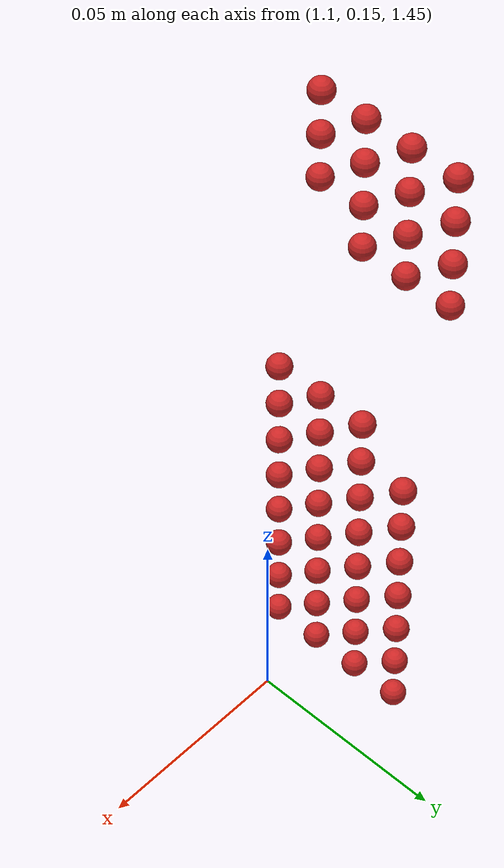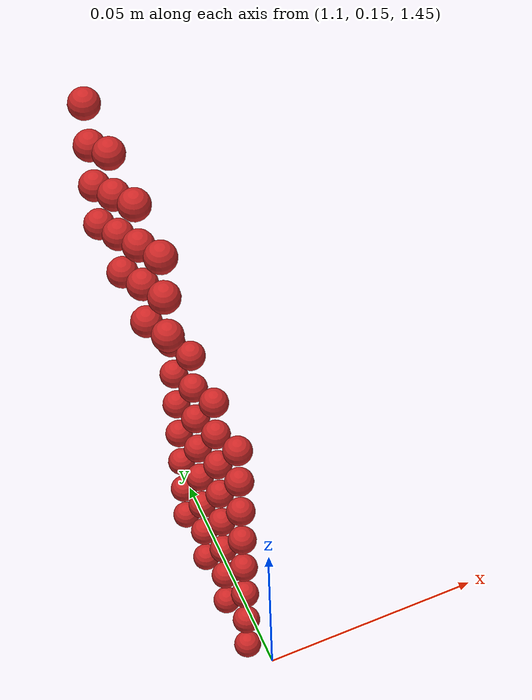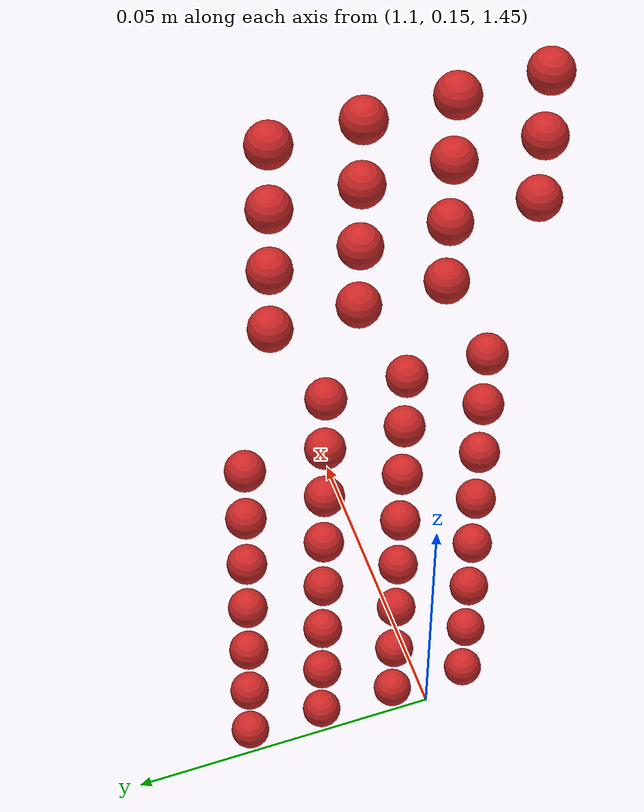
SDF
<sdf version="1.4">
 <world name="default">
  <model name="ground_plane">
   <static>1</static>
   <link name="link">
    <collision name="collision">
     <geometry><plane><normal>0 0 1</normal><size>100 100</size></plane></geometry>
     <surface><friction><ode><mu>100</mu><mu2>50</mu2></ode></friction></surface>
    </collision>
    <visual name="visual">
     <cast_shadows>0</cast_shadows>
     <geometry><plane><normal>0 0 1</normal><size>100 100</size></plane></geometry>
     <material>
      <script><uri>file://media/materials/scripts/gazebo.material</uri><name>Gazebo/Grey</name></script>
     </material>
    </visual>
    <velocity_decay><linear>0</linear><angular>0</angular></velocity_decay>
   </link>
  </model>
  <model name="sphere1">
   <pose>0.552545 0.079517 0.734885 0 0 0</pose>
   <link name="link">
    <pose>0.540545 0.067517 0.734885 0 0 0</pose>
    <inertial>
     <mass>0.001</mass>
     <inertia>
      <ixx>0.004</ixx>
      <ixy>0.000000</ixy>
      <ixz>0.000000</ixz>
      <iyy>0.004</iyy>
      <iyz>0.000000</iyz>
      <izz>0.004</izz>
     </inertia>
    </inertial>
    <collision name="collision">
     <surface>
      <contact><ode><kp>10000000000.000000</kp><kd>1</kd></ode></contact>
      <friction><ode><mu>0.01</mu><mu2>0.01</mu2></ode></friction>
     </surface>
     <geometry><sphere><radius>0.003</radius></sphere></geometry>
    </collision>
    <visual name="visual">
     <geometry><sphere><radius>0.003</radius></sphere></geometry>
     <material>
      <script><uri>file://media/materials/scripts/gazebo.material</uri><name>Gazebo/Red</name></script>
     </material>
    </visual>
   </link>
  </model>
  <model name="sphere5">
   <pose>0.552545 0.085517 0.734885 0 0 0</pose>
   <link name="link">
    <pose>0.540545 0.073517 0.734885 0 0 0</pose>
    <inertial>
     <mass>0.001</mass>
     <inertia>
      <ixx>0.004</ixx>
      <ixy>0.000000</ixy>
      <ixz>0.000000</ixz>
      <iyy>0.004</iyy>
      <iyz>0.000000</iyz>
      <izz>0.004</izz>
     </inertia>
    </inertial>
    <collision name="collision">
     <surface>
      <contact><ode><kp>10000000000.000000</kp><kd>1</kd></ode></contact>
      <friction><ode><mu>0.01</mu><mu2>0.01</mu2></ode></friction>
     </surface>
     <geometry><sphere><radius>0.003</radius></sphere></geometry>
    </collision>
    <visual name="visual">
     <geometry><sphere><radius>0.003</radius></sphere></geometry>
     <material>
      <script><uri>file://media/materials/scripts/gazebo.material</uri><name>Gazebo/Red</name></script>
     </material>
    </visual>
   </link>
  </model>
  <model name="sphere9">
   <pose>0.552545 0.091517 0.734885 0 0 0</pose>
   <link name="link">
    <pose>0.540545 0.079517 0.734885 0 0 0</pose>
    <inertial>
     <mass>0.001</mass>
     <inertia>
      <ixx>0.004</ixx>
      <ixy>0.000000</ixy>
      <ixz>0.000000</ixz>
      <iyy>0.004</iyy>
      <iyz>0.000000</iyz>
      <izz>0.004</izz>
     </inertia>
    </inertial>
    <collision name="collision">
     <surface>
      <contact><ode><kp>10000000000.000000</kp><kd>1</kd></ode></contact>
      <friction><ode><mu>0.01</mu><mu2>0.01</mu2></ode></friction>
     </surface>
     <geometry><sphere><radius>0.003</radius></sphere></geometry>
    </collision>
    <visual name="visual">
     <geometry><sphere><radius>0.003</radius></sphere></geometry>
     <material>
      <script><uri>file://media/materials/scripts/gazebo.material</uri><name>Gazebo/Red</name></script>
     </material>
    </visual>
   </link>
  </model>
  <model name="sphere13">
   <pose>0.552545 0.097517 0.734885 0 0 0</pose>
   <link name="link">
    <pose>0.540545 0.085517 0.734885 0 0 0</pose>
    <inertial>
     <mass>0.001</mass>
     <inertia>
      <ixx>0.004</ixx>
      <ixy>0.000000</ixy>
      <ixz>0.000000</ixz>
      <iyy>0.004</iyy>
      <iyz>0.000000</iyz>
      <izz>0.004</izz>
     </inertia>
    </inertial>
    <collision name="collision">
     <surface>
      <contact><ode><kp>10000000000.000000</kp><kd>1</kd></ode></contact>
      <friction><ode><mu>0.01</mu><mu2>0.01</mu2></ode></friction>
     </surface>
     <geometry><sphere><radius>0.003</radius></sphere></geometry>
    </collision>
    <visual name="visual">
     <geometry><sphere><radius>0.003</radius></sphere></geometry>
     <material>
      <script><uri>file://media/materials/scripts/gazebo.material</uri><name>Gazebo/Red</name></script>
     </material>
    </visual>
   </link>
  </model>
  <model name="sphere17">
   <pose>0.552545 0.079517 0.740885 0 0 0</pose>
   <link name="link">
    <pose>0.540545 0.067517 0.740885 0 0 0</pose>
    <inertial>
     <mass>0.001</mass>
     <inertia>
      <ixx>0.004</ixx>
      <ixy>0.000000</ixy>
      <ixz>0.000000</ixz>
      <iyy>0.004</iyy>
      <iyz>0.000000</iyz>
      <izz>0.004</izz>
     </inertia>
    </inertial>
    <collision name="collision">
     <surface>
      <contact><ode><kp>10000000000.000000</kp><kd>1</kd></ode></contact>
      <friction><ode><mu>0.01</mu><mu2>0.01</mu2></ode></friction>
     </surface>
     <geometry><sphere><radius>0.003</radius></sphere></geometry>
    </collision>
    <visual name="visual">
     <geometry><sphere><radius>0.003</radius></sphere></geometry>
     <material>
      <script><uri>file://media/materials/scripts/gazebo.material</uri><name>Gazebo/Red</name></script>
     </material>
    </visual>
   </link>
  </model>
  <model name="sphere21">
   <pose>0.552545 0.085517 0.740885 0 0 0</pose>
   <link name="link">
    <pose>0.540545 0.073517 0.740885 0 0 0</pose>
    <inertial>
     <mass>0.001</mass>
     <inertia>
      <ixx>0.004</ixx>
      <ixy>0.000000</ixy>
      <ixz>0.000000</ixz>
      <iyy>0.004</iyy>
      <iyz>0.000000</iyz>
      <izz>0.004</izz>
     </inertia>
    </inertial>
    <collision name="collision">
     <surface>
      <contact><ode><kp>10000000000.000000</kp><kd>1</kd></ode></contact>
      <friction><ode><mu>0.01</mu><mu2>0.01</mu2></ode></friction>
     </surface>
     <geometry><sphere><radius>0.003</radius></sphere></geometry>
    </collision>
    <visual name="visual">
     <geometry><sphere><radius>0.003</radius></sphere></geometry>
     <material>
      <script><uri>file://media/materials/scripts/gazebo.material</uri><name>Gazebo/Red</name></script>
     </material>
    </visual>
   </link>
  </model>
  <model name="sphere25">
   <pose>0.552545 0.091517 0.740885 0 0 0</pose>
   <link name="link">
    <pose>0.540545 0.079517 0.740885 0 0 0</pose>
    <inertial>
     <mass>0.001</mass>
     <inertia>
      <ixx>0.004</ixx>
      <ixy>0.000000</ixy>
      <ixz>0.000000</ixz>
      <iyy>0.004</iyy>
      <iyz>0.000000</iyz>
      <izz>0.004</izz>
     </inertia>
    </inertial>
    <collision name="collision">
     <surface>
      <contact><ode><kp>10000000000.000000</kp><kd>1</kd></ode></contact>
      <friction><ode><mu>0.01</mu><mu2>0.01</mu2></ode></friction>
     </surface>
     <geometry><sphere><radius>0.003</radius></sphere></geometry>
    </collision>
    <visual name="visual">
     <geometry><sphere><radius>0.003</radius></sphere></geometry>
     <material>
      <script><uri>file://media/materials/scripts/gazebo.material</uri><name>Gazebo/Red</name></script>
     </material>
    </visual>
   </link>
  </model>
  <model name="sphere29">
   <pose>0.552545 0.097517 0.740885 0 0 0</pose>
   <link name="link">
    <pose>0.540545 0.085517 0.740885 0 0 0</pose>
    <inertial>
     <mass>0.001</mass>
     <inertia>
      <ixx>0.004</ixx>
      <ixy>0.000000</ixy>
      <ixz>0.000000</ixz>
      <iyy>0.004</iyy>
      <iyz>0.000000</iyz>
      <izz>0.004</izz>
     </inertia>
    </inertial>
    <collision name="collision">
     <surface>
      <contact><ode><kp>10000000000.000000</kp><kd>1</kd></ode></contact>
      <friction><ode><mu>0.01</mu><mu2>0.01</mu2></ode></friction>
     </surface>
     <geometry><sphere><radius>0.003</radius></sphere></geometry>
    </collision>
    <visual name="visual">
     <geometry><sphere><radius>0.003</radius></sphere></geometry>
     <material>
      <script><uri>file://media/materials/scripts/gazebo.material</uri><name>Gazebo/Red</name></script>
     </material>
    </visual>
   </link>
  </model>
  <model name="sphere33">
   <pose>0.552545 0.079517 0.746885 0 0 0</pose>
   <link name="link">
    <pose>0.540545 0.067517 0.746885 0 0 0</pose>
    <inertial>
     <mass>0.001</mass>
     <inertia>
      <ixx>0.004</ixx>
      <ixy>0.000000</ixy>
      <ixz>0.000000</ixz>
      <iyy>0.004</iyy>
      <iyz>0.000000</iyz>
      <izz>0.004</izz>
     </inertia>
    </inertial>
    <collision name="collision">
     <surface>
      <contact><ode><kp>10000000000.000000</kp><kd>1</kd></ode></contact>
      <friction><ode><mu>0.01</mu><mu2>0.01</mu2></ode></friction>
     </surface>
     <geometry><sphere><radius>0.003</radius></sphere></geometry>
    </collision>
    <visual name="visual">
     <geometry><sphere><radius>0.003</radius></sphere></geometry>
     <material>
      <script><uri>file://media/materials/scripts/gazebo.material</uri><name>Gazebo/Red</name></script>
     </material>
    </visual>
   </link>
  </model>
  <model name="sphere37">
   <pose>0.552545 0.085517 0.746885 0 0 0</pose>
   <link name="link">
    <pose>0.540545 0.073517 0.746885 0 0 0</pose>
    <inertial>
     <mass>0.001</mass>
     <inertia>
      <ixx>0.004</ixx>
      <ixy>0.000000</ixy>
      <ixz>0.000000</ixz>
      <iyy>0.004</iyy>
      <iyz>0.000000</iyz>
      <izz>0.004</izz>
     </inertia>
    </inertial>
    <collision name="collision">
     <surface>
      <contact><ode><kp>10000000000.000000</kp><kd>1</kd></ode></contact>
      <friction><ode><mu>0.01</mu><mu2>0.01</mu2></ode></friction>
     </surface>
     <geometry><sphere><radius>0.003</radius></sphere></geometry>
    </collision>
    <visual name="visual">
     <geometry><sphere><radius>0.003</radius></sphere></geometry>
     <material>
      <script><uri>file://media/materials/scripts/gazebo.material</uri><name>Gazebo/Red</name></script>
     </material>
    </visual>
   </link>
  </model>
  <model name="sphere41">
   <pose>0.552545 0.091517 0.746885 0 0 0</pose>
   <link name="link">
    <pose>0.540545 0.079517 0.746885 0 0 0</pose>
    <inertial>
     <mass>0.001</mass>
     <inertia>
      <ixx>0.004</ixx>
      <ixy>0.000000</ixy>
      <ixz>0.000000</ixz>
      <iyy>0.004</iyy>
      <iyz>0.000000</iyz>
      <izz>0.004</izz>
     </inertia>
    </inertial>
    <collision name="collision">
     <surface>
      <contact><ode><kp>10000000000.000000</kp><kd>1</kd></ode></contact>
      <friction><ode><mu>0.01</mu><mu2>0.01</mu2></ode></friction>
     </surface>
     <geometry><sphere><radius>0.003</radius></sphere></geometry>
    </collision>
    <visual name="visual">
     <geometry><sphere><radius>0.003</radius></sphere></geometry>
     <material>
      <script><uri>file://media/materials/scripts/gazebo.material</uri><name>Gazebo/Red</name></script>
     </material>
    </visual>
   </link>
  </model>
  <model name="sphere45">
   <pose>0.552545 0.097517 0.746885 0 0 0</pose>
   <link name="link">
    <pose>0.540545 0.085517 0.746885 0 0 0</pose>
    <inertial>
     <mass>0.001</mass>
     <inertia>
      <ixx>0.004</ixx>
      <ixy>0.000000</ixy>
      <ixz>0.000000</ixz>
      <iyy>0.004</iyy>
      <iyz>0.000000</iyz>
      <izz>0.004</izz>
     </inertia>
    </inertial>
    <collision name="collision">
     <surface>
      <contact><ode><kp>10000000000.000000</kp><kd>1</kd></ode></contact>
      <friction><ode><mu>0.01</mu><mu2>0.01</mu2></ode></friction>
     </surface>
     <geometry><sphere><radius>0.003</radius></sphere></geometry>
    </collision>
    <visual name="visual">
     <geometry><sphere><radius>0.003</radius></sphere></geometry>
     <material>
      <script><uri>file://media/materials/scripts/gazebo.material</uri><name>Gazebo/Red</name></script>
     </material>
    </visual>
   </link>
  </model>
  <model name="sphere49">
   <pose>0.552545 0.079517 0.752885 0 0 0</pose>
   <link name="link">
    <pose>0.540545 0.067517 0.752885 0 0 0</pose>
    <inertial>
     <mass>0.001</mass>
     <inertia>
      <ixx>0.004</ixx>
      <ixy>0.000000</ixy>
      <ixz>0.000000</ixz>
      <iyy>0.004</iyy>
      <iyz>0.000000</iyz>
      <izz>0.004</izz>
     </inertia>
    </inertial>
    <collision name="collision">
     <surface>
      <contact><ode><kp>10000000000.000000</kp><kd>1</kd></ode></contact>
      <friction><ode><mu>0.01</mu><mu2>0.01</mu2></ode></friction>
     </surface>
     <geometry><sphere><radius>0.003</radius></sphere></geometry>
    </collision>
    <visual name="visual">
     <geometry><sphere><radius>0.003</radius></sphere></geometry>
     <material>
      <script><uri>file://media/materials/scripts/gazebo.material</uri><name>Gazebo/Red</name></script>
     </material>
    </visual>
   </link>
  </model>
  <model name="sphere53">
   <pose>0.552545 0.085517 0.752885 0 0 0</pose>
   <link name="link">
    <pose>0.540545 0.073517 0.752885 0 0 0</pose>
    <inertial>
     <mass>0.001</mass>
     <inertia>
      <ixx>0.004</ixx>
      <ixy>0.000000</ixy>
      <ixz>0.000000</ixz>
      <iyy>0.004</iyy>
      <iyz>0.000000</iyz>
      <izz>0.004</izz>
     </inertia>
    </inertial>
    <collision name="collision">
     <surface>
      <contact><ode><kp>10000000000.000000</kp><kd>1</kd></ode></contact>
      <friction><ode><mu>0.01</mu><mu2>0.01</mu2></ode></friction>
     </surface>
     <geometry><sphere><radius>0.003</radius></sphere></geometry>
    </collision>
    <visual name="visual">
     <geometry><sphere><radius>0.003</radius></sphere></geometry>
     <material>
      <script><uri>file://media/materials/scripts/gazebo.material</uri><name>Gazebo/Red</name></script>
     </material>
    </visual>
   </link>
  </model>
  <model name="sphere57">
   <pose>0.552545 0.091517 0.752885 0 0 0</pose>
   <link name="link">
    <pose>0.540545 0.079517 0.752885 0 0 0</pose>
    <inertial>
     <mass>0.001</mass>
     <inertia>
      <ixx>0.004</ixx>
      <ixy>0.000000</ixy>
      <ixz>0.000000</ixz>
      <iyy>0.004</iyy>
      <iyz>0.000000</iyz>
      <izz>0.004</izz>
     </inertia>
    </inertial>
    <collision name="collision">
     <surface>
      <contact><ode><kp>10000000000.000000</kp><kd>1</kd></ode></contact>
      <friction><ode><mu>0.01</mu><mu2>0.01</mu2></ode></friction>
     </surface>
     <geometry><sphere><radius>0.003</radius></sphere></geometry>
    </collision>
    <visual name="visual">
     <geometry><sphere><radius>0.003</radius></sphere></geometry>
     <material>
      <script><uri>file://media/materials/scripts/gazebo.material</uri><name>Gazebo/Red</name></script>
     </material>
    </visual>
   </link>
  </model>
  <model name="sphere61">
   <pose>0.552545 0.097517 0.752885 0 0 0</pose>
   <link name="link">
    <pose>0.540545 0.085517 0.752885 0 0 0</pose>
    <inertial>
     <mass>0.001</mass>
     <inertia>
      <ixx>0.004</ixx>
      <ixy>0.000000</ixy>
      <ixz>0.000000</ixz>
      <iyy>0.004</iyy>
      <iyz>0.000000</iyz>
      <izz>0.004</izz>
     </inertia>
    </inertial>
    <collision name="collision">
     <surface>
      <contact><ode><kp>10000000000.000000</kp><kd>1</kd></ode></contact>
      <friction><ode><mu>0.01</mu><mu2>0.01</mu2></ode></friction>
     </surface>
     <geometry><sphere><radius>0.003</radius></sphere></geometry>
    </collision>
    <visual name="visual">
     <geometry><sphere><radius>0.003</radius></sphere></geometry>
     <material>
      <script><uri>file://media/materials/scripts/gazebo.material</uri><name>Gazebo/Red</name></script>
     </material>
    </visual>
   </link>
  </model>
  <model name="sphere65">
   <pose>0.552545 0.079517 0.758885 0 0 0</pose>
   <link name="link">
    <pose>0.540545 0.067517 0.758885 0 0 0</pose>
    <inertial>
     <mass>0.001</mass>
     <inertia>
      <ixx>0.004</ixx>
      <ixy>0.000000</ixy>
      <ixz>0.000000</ixz>
      <iyy>0.004</iyy>
      <iyz>0.000000</iyz>
      <izz>0.004</izz>
     </inertia>
    </inertial>
    <collision name="collision">
     <surface>
      <contact><ode><kp>10000000000.000000</kp><kd>1</kd></ode></contact>
      <friction><ode><mu>0.01</mu><mu2>0.01</mu2></ode></friction>
     </surface>
     <geometry><sphere><radius>0.003</radius></sphere></geometry>
    </collision>
    <visual name="visual">
     <geometry><sphere><radius>0.003</radius></sphere></geometry>
     <material>
      <script><uri>file://media/materials/scripts/gazebo.material</uri><name>Gazebo/Red</name></script>
     </material>
    </visual>
   </link>
  </model>
  <model name="sphere69">
   <pose>0.552545 0.085517 0.758885 0 0 0</pose>
   <link name="link">
    <pose>0.540545 0.073517 0.758885 0 0 0</pose>
    <inertial>
     <mass>0.001</mass>
     <inertia>
      <ixx>0.004</ixx>
      <ixy>0.000000</ixy>
      <ixz>0.000000</ixz>
      <iyy>0.004</iyy>
      <iyz>0.000000</iyz>
      <izz>0.004</izz>
     </inertia>
    </inertial>
    <collision name="collision">
     <surface>
      <contact><ode><kp>10000000000.000000</kp><kd>1</kd></ode></contact>
      <friction><ode><mu>0.01</mu><mu2>0.01</mu2></ode></friction>
     </surface>
     <geometry><sphere><radius>0.003</radius></sphere></geometry>
    </collision>
    <visual name="visual">
     <geometry><sphere><radius>0.003</radius></sphere></geometry>
     <material>
      <script><uri>file://media/materials/scripts/gazebo.material</uri><name>Gazebo/Red</name></script>
     </material>
    </visual>
   </link>
  </model>
  <model name="sphere73">
   <pose>0.552545 0.091517 0.758885 0 0 0</pose>
   <link name="link">
    <pose>0.540545 0.079517 0.758885 0 0 0</pose>
    <inertial>
     <mass>0.001</mass>
     <inertia>
      <ixx>0.004</ixx>
      <ixy>0.000000</ixy>
      <ixz>0.000000</ixz>
      <iyy>0.004</iyy>
      <iyz>0.000000</iyz>
      <izz>0.004</izz>
     </inertia>
    </inertial>
    <collision name="collision">
     <surface>
      <contact><ode><kp>10000000000.000000</kp><kd>1</kd></ode></contact>
      <friction><ode><mu>0.01</mu><mu2>0.01</mu2></ode></friction>
     </surface>
     <geometry><sphere><radius>0.003</radius></sphere></geometry>
    </collision>
    <visual name="visual">
     <geometry><sphere><radius>0.003</radius></sphere></geometry>
     <material>
      <script><uri>file://media/materials/scripts/gazebo.material</uri><name>Gazebo/Red</name></script>
     </material>
    </visual>
   </link>
  </model>
  <model name="sphere77">
   <pose>0.552545 0.097517 0.758885 0 0 0</pose>
   <link name="link">
    <pose>0.540545 0.085517 0.758885 0 0 0</pose>
    <inertial>
     <mass>0.001</mass>
     <inertia>
      <ixx>0.004</ixx>
      <ixy>0.000000</ixy>
      <ixz>0.000000</ixz>
      <iyy>0.004</iyy>
      <iyz>0.000000</iyz>
      <izz>0.004</izz>
     </inertia>
    </inertial>
    <collision name="collision">
     <surface>
      <contact><ode><kp>10000000000.000000</kp><kd>1</kd></ode></contact>
      <friction><ode><mu>0.01</mu><mu2>0.01</mu2></ode></friction>
     </surface>
     <geometry><sphere><radius>0.003</radius></sphere></geometry>
    </collision>
    <visual name="visual">
     <geometry><sphere><radius>0.003</radius></sphere></geometry>
     <material>
      <script><uri>file://media/materials/scripts/gazebo.material</uri><name>Gazebo/Red</name></script>
     </material>
    </visual>
   </link>
  </model>
  <model name="sphere81">
   <pose>0.552545 0.079517 0.764885 0 0 0</pose>
   <link name="link">
    <pose>0.540545 0.067517 0.764885 0 0 0</pose>
    <inertial>
     <mass>0.001</mass>
     <inertia>
      <ixx>0.004</ixx>
      <ixy>0.000000</ixy>
      <ixz>0.000000</ixz>
      <iyy>0.004</iyy>
      <iyz>0.000000</iyz>
      <izz>0.004</izz>
     </inertia>
    </inertial>
    <collision name="collision">
     <surface>
      <contact><ode><kp>10000000000.000000</kp><kd>1</kd></ode></contact>
      <friction><ode><mu>0.01</mu><mu2>0.01</mu2></ode></friction>
     </surface>
     <geometry><sphere><radius>0.003</radius></sphere></geometry>
    </collision>
    <visual name="visual">
     <geometry><sphere><radius>0.003</radius></sphere></geometry>
     <material>
      <script><uri>file://media/materials/scripts/gazebo.material</uri><name>Gazebo/Red</name></script>
     </material>
    </visual>
   </link>
  </model>
  <model name="sphere85">
   <pose>0.552545 0.085517 0.764885 0 0 0</pose>
   <link name="link">
    <pose>0.540545 0.073517 0.764885 0 0 0</pose>
    <inertial>
     <mass>0.001</mass>
     <inertia>
      <ixx>0.004</ixx>
      <ixy>0.000000</ixy>
      <ixz>0.000000</ixz>
      <iyy>0.004</iyy>
      <iyz>0.000000</iyz>
      <izz>0.004</izz>
     </inertia>
    </inertial>
    <collision name="collision">
     <surface>
      <contact><ode><kp>10000000000.000000</kp><kd>1</kd></ode></contact>
      <friction><ode><mu>0.01</mu><mu2>0.01</mu2></ode></friction>
     </surface>
     <geometry><sphere><radius>0.003</radius></sphere></geometry>
    </collision>
    <visual name="visual">
     <geometry><sphere><radius>0.003</radius></sphere></geometry>
     <material>
      <script><uri>file://media/materials/scripts/gazebo.material</uri><name>Gazebo/Red</name></script>
     </material>
    </visual>
   </link>
  </model>
  <model name="sphere89">
   <pose>0.552545 0.091517 0.764885 0 0 0</pose>
   <link name="link">
    <pose>0.540545 0.079517 0.764885 0 0 0</pose>
    <inertial>
     <mass>0.001</mass>
     <inertia>
      <ixx>0.004</ixx>
      <ixy>0.000000</ixy>
      <ixz>0.000000</ixz>
      <iyy>0.004</iyy>
      <iyz>0.000000</iyz>
      <izz>0.004</izz>
     </inertia>
    </inertial>
    <collision name="collision">
     <surface>
      <contact><ode><kp>10000000000.000000</kp><kd>1</kd></ode></contact>
      <friction><ode><mu>0.01</mu><mu2>0.01</mu2></ode></friction>
     </surface>
     <geometry><sphere><radius>0.003</radius></sphere></geometry>
    </collision>
    <visual name="visual">
     <geometry><sphere><radius>0.003</radius></sphere></geometry>
     <material>
      <script><uri>file://media/materials/scripts/gazebo.material</uri><name>Gazebo/Red</name></script>
     </material>
    </visual>
   </link>
  </model>
  <model name="sphere93">
   <pose>0.552545 0.097517 0.764885 0 0 0</pose>
   <link name="link">
    <pose>0.540545 0.085517 0.764885 0 0 0</pose>
    <inertial>
     <mass>0.001</mass>
     <inertia>
      <ixx>0.004</ixx>
      <ixy>0.000000</ixy>
      <ixz>0.000000</ixz>
      <iyy>0.004</iyy>
      <iyz>0.000000</iyz>
      <izz>0.004</izz>
     </inertia>
    </inertial>
    <collision name="collision">
     <surface>
      <contact><ode><kp>10000000000.000000</kp><kd>1</kd></ode></contact>
      <friction><ode><mu>0.01</mu><mu2>0.01</mu2></ode></friction>
     </surface>
     <geometry><sphere><radius>0.003</radius></sphere></geometry>
    </collision>
    <visual name="visual">
     <geometry><sphere><radius>0.003</radius></sphere></geometry>
     <material>
      <script><uri>file://media/materials/scripts/gazebo.material</uri><name>Gazebo/Red</name></script>
     </material>
    </visual>
   </link>
  </model>
  <model name="sphere97">
   <pose>0.552545 0.079517 0.770885 0 0 0</pose>
   <link name="link">
    <pose>0.540545 0.067517 0.770885 0 0 0</pose>
    <inertial>
     <mass>0.001</mass>
     <inertia>
      <ixx>0.004</ixx>
      <ixy>0.000000</ixy>
      <ixz>0.000000</ixz>
      <iyy>0.004</iyy>
      <iyz>0.000000</iyz>
      <izz>0.004</izz>
     </inertia>
    </inertial>
    <collision name="collision">
     <surface>
      <contact><ode><kp>10000000000.000000</kp><kd>1</kd></ode></contact>
      <friction><ode><mu>0.01</mu><mu2>0.01</mu2></ode></friction>
     </surface>
     <geometry><sphere><radius>0.003</radius></sphere></geometry>
    </collision>
    <visual name="visual">
     <geometry><sphere><radius>0.003</radius></sphere></geometry>
     <material>
      <script><uri>file://media/materials/scripts/gazebo.material</uri><name>Gazebo/Red</name></script>
     </material>
    </visual>
   </link>
  </model>
  <model name="sphere101">
   <pose>0.552545 0.085517 0.770885 0 0 0</pose>
   <link name="link">
    <pose>0.540545 0.073517 0.770885 0 0 0</pose>
    <inertial>
     <mass>0.001</mass>
     <inertia>
      <ixx>0.004</ixx>
      <ixy>0.000000</ixy>
      <ixz>0.000000</ixz>
      <iyy>0.004</iyy>
      <iyz>0.000000</iyz>
      <izz>0.004</izz>
     </inertia>
    </inertial>
    <collision name="collision">
     <surface>
      <contact><ode><kp>10000000000.000000</kp><kd>1</kd></ode></contact>
      <friction><ode><mu>0.01</mu><mu2>0.01</mu2></ode></friction>
     </surface>
     <geometry><sphere><radius>0.003</radius></sphere></geometry>
    </collision>
    <visual name="visual">
     <geometry><sphere><radius>0.003</radius></sphere></geometry>
     <material>
      <script><uri>file://media/materials/scripts/gazebo.material</uri><name>Gazebo/Red</name></script>
     </material>
    </visual>
   </link>
  </model>
  <model name="sphere105">
   <pose>0.552545 0.091517 0.770885 0 0 0</pose>
   <link name="link">
    <pose>0.540545 0.079517 0.770885 0 0 0</pose>
    <inertial>
     <mass>0.001</mass>
     <inertia>
      <ixx>0.004</ixx>
      <ixy>0.000000</ixy>
      <ixz>0.000000</ixz>
      <iyy>0.004</iyy>
      <iyz>0.000000</iyz>
      <izz>0.004</izz>
     </inertia>
    </inertial>
    <collision name="collision">
     <surface>
      <contact><ode><kp>10000000000.000000</kp><kd>1</kd></ode></contact>
      <friction><ode><mu>0.01</mu><mu2>0.01</mu2></ode></friction>
     </surface>
     <geometry><sphere><radius>0.003</radius></sphere></geometry>
    </collision>
    <visual name="visual">
     <geometry><sphere><radius>0.003</radius></sphere></geometry>
     <material>
      <script><uri>file://media/materials/scripts/gazebo.material</uri><name>Gazebo/Red</name></script>
     </material>
    </visual>
   </link>
  </model>
  <model name="sphere109">
   <pose>0.552545 0.097517 0.770885 0 0 0</pose>
   <link name="link">
    <pose>0.540545 0.085517 0.770885 0 0 0</pose>
    <inertial>
     <mass>0.001</mass>
     <inertia>
      <ixx>0.004</ixx>
      <ixy>0.000000</ixy>
      <ixz>0.000000</ixz>
      <iyy>0.004</iyy>
      <iyz>0.000000</iyz>
      <izz>0.004</izz>
     </inertia>
    </inertial>
    <collision name="collision">
     <surface>
      <contact><ode><kp>10000000000.000000</kp><kd>1</kd></ode></contact>
      <friction><ode><mu>0.01</mu><mu2>0.01</mu2></ode></friction>
     </surface>
     <geometry><sphere><radius>0.003</radius></sphere></geometry>
    </collision>
    <visual name="visual">
     <geometry><sphere><radius>0.003</radius></sphere></geometry>
     <material>
      <script><uri>file://media/materials/scripts/gazebo.material</uri><name>Gazebo/Red</name></script>
     </material>
    </visual>
   </link>
  </model>
  <model name="sphere113">
   <pose>0.552545 0.079517 0.776885 0 0 0</pose>
   <link name="link">
    <pose>0.540545 0.067517 0.776885 0 0 0</pose>
    <inertial>
     <mass>0.001</mass>
     <inertia>
      <ixx>0.004</ixx>
      <ixy>0.000000</ixy>
      <ixz>0.000000</ixz>
      <iyy>0.004</iyy>
      <iyz>0.000000</iyz>
      <izz>0.004</izz>
     </inertia>
    </inertial>
    <collision name="collision">
     <surface>
      <contact><ode><kp>10000000000.000000</kp><kd>1</kd></ode></contact>
      <friction><ode><mu>0.01</mu><mu2>0.01</mu2></ode></friction>
     </surface>
     <geometry><sphere><radius>0.003</radius></sphere></geometry>
    </collision>
    <visual name="visual">
     <geometry><sphere><radius>0.003</radius></sphere></geometry>
     <material>
      <script><uri>file://media/materials/scripts/gazebo.material</uri><name>Gazebo/Red</name></script>
     </material>
    </visual>
   </link>
  </model>
  <model name="sphere117">
   <pose>0.552545 0.085517 0.776885 0 0 0</pose>
   <link name="link">
    <pose>0.540545 0.073517 0.776885 0 0 0</pose>
    <inertial>
     <mass>0.001</mass>
     <inertia>
      <ixx>0.004</ixx>
      <ixy>0.000000</ixy>
      <ixz>0.000000</ixz>
      <iyy>0.004</iyy>
      <iyz>0.000000</iyz>
      <izz>0.004</izz>
     </inertia>
    </inertial>
    <collision name="collision">
     <surface>
      <contact><ode><kp>10000000000.000000</kp><kd>1</kd></ode></contact>
      <friction><ode><mu>0.01</mu><mu2>0.01</mu2></ode></friction>
     </surface>
     <geometry><sphere><radius>0.003</radius></sphere></geometry>
    </collision>
    <visual name="visual">
     <geometry><sphere><radius>0.003</radius></sphere></geometry>
     <material>
      <script><uri>file://media/materials/scripts/gazebo.material</uri><name>Gazebo/Red</name></script>
     </material>
    </visual>
   </link>
  </model>
  <model name="sphere121">
   <pose>0.552545 0.091517 0.776885 0 0 0</pose>
   <link name="link">
    <pose>0.540545 0.079517 0.776885 0 0 0</pose>
    <inertial>
     <mass>0.001</mass>
     <inertia>
      <ixx>0.004</ixx>
      <ixy>0.000000</ixy>
      <ixz>0.000000</ixz>
      <iyy>0.004</iyy>
      <iyz>0.000000</iyz>
      <izz>0.004</izz>
     </inertia>
    </inertial>
    <collision name="collision">
     <surface>
      <contact><ode><kp>10000000000.000000</kp><kd>1</kd></ode></contact>
      <friction><ode><mu>0.01</mu><mu2>0.01</mu2></ode></friction>
     </surface>
     <geometry><sphere><radius>0.003</radius></sphere></geometry>
    </collision>
    <visual name="visual">
     <geometry><sphere><radius>0.003</radius></sphere></geometry>
     <material>
      <script><uri>file://media/materials/scripts/gazebo.material</uri><name>Gazebo/Red</name></script>
     </material>
    </visual>
   </link>
  </model>
  <model name="sphere164">
   <pose>0.546545 0.085517 0.794885 0 0 0</pose>
   <link name="link">
    <pose>0.534545 0.073517 0.794885 0 0 0</pose>
    <inertial>
     <mass>0.001</mass>
     <inertia>
      <ixx>0.004</ixx>
      <ixy>0.000000</ixy>
      <ixz>0.000000</ixz>
      <iyy>0.004</iyy>
      <iyz>0.000000</iyz>
      <izz>0.004</izz>
     </inertia>
    </inertial>
    <collision name="collision">
     <surface>
      <contact><ode><kp>10000000000.000000</kp><kd>1</kd></ode></contact>
      <friction><ode><mu>0.01</mu><mu2>0.01</mu2></ode></friction>
     </surface>
     <geometry><sphere><radius>0.003</radius></sphere></geometry>
    </collision>
    <visual name="visual">
     <geometry><sphere><radius>0.003</radius></sphere></geometry>
     <material>
      <script><uri>file://media/materials/scripts/gazebo.material</uri><name>Gazebo/Red</name></script>
     </material>
    </visual>
   </link>
  </model>
  <model name="sphere168">
   <pose>0.546545 0.091517 0.794885 0 0 0</pose>
   <link name="link">
    <pose>0.534545 0.079517 0.794885 0 0 0</pose>
    <inertial>
     <mass>0.001</mass>
     <inertia>
      <ixx>0.004</ixx>
      <ixy>0.000000</ixy>
      <ixz>0.000000</ixz>
      <iyy>0.004</iyy>
      <iyz>0.000000</iyz>
      <izz>0.004</izz>
     </inertia>
    </inertial>
    <collision name="collision">
     <surface>
      <contact><ode><kp>10000000000.000000</kp><kd>1</kd></ode></contact>
      <friction><ode><mu>0.01</mu><mu2>0.01</mu2></ode></friction>
     </surface>
     <geometry><sphere><radius>0.003</radius></sphere></geometry>
    </collision>
    <visual name="visual">
     <geometry><sphere><radius>0.003</radius></sphere></geometry>
     <material>
      <script><uri>file://media/materials/scripts/gazebo.material</uri><name>Gazebo/Red</name></script>
     </material>
    </visual>
   </link>
  </model>
  <model name="sphere172">
   <pose>0.546545 0.097517 0.794885 0 0 0</pose>
   <link name="link">
    <pose>0.534545 0.085517 0.794885 0 0 0</pose>
    <inertial>
     <mass>0.001</mass>
     <inertia>
      <ixx>0.004</ixx>
      <ixy>0.000000</ixy>
      <ixz>0.000000</ixz>
      <iyy>0.004</iyy>
      <iyz>0.000000</iyz>
      <izz>0.004</izz>
     </inertia>
    </inertial>
    <collision name="collision">
     <surface>
      <contact><ode><kp>10000000000.000000</kp><kd>1</kd></ode></contact>
      <friction><ode><mu>0.01</mu><mu2>0.01</mu2></ode></friction>
     </surface>
     <geometry><sphere><radius>0.003</radius></sphere></geometry>
    </collision>
    <visual name="visual">
     <geometry><sphere><radius>0.003</radius></sphere></geometry>
     <material>
      <script><uri>file://media/materials/scripts/gazebo.material</uri><name>Gazebo/Red</name></script>
     </material>
    </visual>
   </link>
  </model>
  <model name="sphere176">
   <pose>0.546545 0.079517 0.800885 0 0 0</pose>
   <link name="link">
    <pose>0.534545 0.067517 0.800885 0 0 0</pose>
    <inertial>
     <mass>0.001</mass>
     <inertia>
      <ixx>0.004</ixx>
      <ixy>0.000000</ixy>
      <ixz>0.000000</ixz>
      <iyy>0.004</iyy>
      <iyz>0.000000</iyz>
      <izz>0.004</izz>
     </inertia>
    </inertial>
    <collision name="collision">
     <surface>
      <contact><ode><kp>10000000000.000000</kp><kd>1</kd></ode></contact>
      <friction><ode><mu>0.01</mu><mu2>0.01</mu2></ode></friction>
     </surface>
     <geometry><sphere><radius>0.003</radius></sphere></geometry>
    </collision>
    <visual name="visual">
     <geometry><sphere><radius>0.003</radius></sphere></geometry>
     <material>
      <script><uri>file://media/materials/scripts/gazebo.material</uri><name>Gazebo/Red</name></script>
     </material>
    </visual>
   </link>
  </model>
  <model name="sphere180">
   <pose>0.546545 0.085517 0.800885 0 0 0</pose>
   <link name="link">
    <pose>0.534545 0.073517 0.800885 0 0 0</pose>
    <inertial>
     <mass>0.001</mass>
     <inertia>
      <ixx>0.004</ixx>
      <ixy>0.000000</ixy>
      <ixz>0.000000</ixz>
      <iyy>0.004</iyy>
      <iyz>0.000000</iyz>
      <izz>0.004</izz>
     </inertia>
    </inertial>
    <collision name="collision">
     <surface>
      <contact><ode><kp>10000000000.000000</kp><kd>1</kd></ode></contact>
      <friction><ode><mu>0.01</mu><mu2>0.01</mu2></ode></friction>
     </surface>
     <geometry><sphere><radius>0.003</radius></sphere></geometry>
    </collision>
    <visual name="visual">
     <geometry><sphere><radius>0.003</radius></sphere></geometry>
     <material>
      <script><uri>file://media/materials/scripts/gazebo.material</uri><name>Gazebo/Red</name></script>
     </material>
    </visual>
   </link>
  </model>
  <model name="sphere184">
   <pose>0.546545 0.091517 0.800885 0 0 0</pose>
   <link name="link">
    <pose>0.534545 0.079517 0.800885 0 0 0</pose>
    <inertial>
     <mass>0.001</mass>
     <inertia>
      <ixx>0.004</ixx>
      <ixy>0.000000</ixy>
      <ixz>0.000000</ixz>
      <iyy>0.004</iyy>
      <iyz>0.000000</iyz>
      <izz>0.004</izz>
     </inertia>
    </inertial>
    <collision name="collision">
     <surface>
      <contact><ode><kp>10000000000.000000</kp><kd>1</kd></ode></contact>
      <friction><ode><mu>0.01</mu><mu2>0.01</mu2></ode></friction>
     </surface>
     <geometry><sphere><radius>0.003</radius></sphere></geometry>
    </collision>
    <visual name="visual">
     <geometry><sphere><radius>0.003</radius></sphere></geometry>
     <material>
      <script><uri>file://media/materials/scripts/gazebo.material</uri><name>Gazebo/Red</name></script>
     </material>
    </visual>
   </link>
  </model>
  <model name="sphere188">
   <pose>0.546545 0.097517 0.800885 0 0 0</pose>
   <link name="link">
    <pose>0.534545 0.085517 0.800885 0 0 0</pose>
    <inertial>
     <mass>0.001</mass>
     <inertia>
      <ixx>0.004</ixx>
      <ixy>0.000000</ixy>
      <ixz>0.000000</ixz>
      <iyy>0.004</iyy>
      <iyz>0.000000</iyz>
      <izz>0.004</izz>
     </inertia>
    </inertial>
    <collision name="collision">
     <surface>
      <contact><ode><kp>10000000000.000000</kp><kd>1</kd></ode></contact>
      <friction><ode><mu>0.01</mu><mu2>0.01</mu2></ode></friction>
     </surface>
     <geometry><sphere><radius>0.003</radius></sphere></geometry>
    </collision>
    <visual name="visual">
     <geometry><sphere><radius>0.003</radius></sphere></geometry>
     <material>
      <script><uri>file://media/materials/scripts/gazebo.material</uri><name>Gazebo/Red</name></script>
     </material>
    </visual>
   </link>
  </model>
  <model name="sphere192">
   <pose>0.546545 0.079517 0.806885 0 0 0</pose>
   <link name="link">
    <pose>0.534545 0.067517 0.806885 0 0 0</pose>
    <inertial>
     <mass>0.001</mass>
     <inertia>
      <ixx>0.004</ixx>
      <ixy>0.000000</ixy>
      <ixz>0.000000</ixz>
      <iyy>0.004</iyy>
      <iyz>0.000000</iyz>
      <izz>0.004</izz>
     </inertia>
    </inertial>
    <collision name="collision">
     <surface>
      <contact><ode><kp>10000000000.000000</kp><kd>1</kd></ode></contact>
      <friction><ode><mu>0.01</mu><mu2>0.01</mu2></ode></friction>
     </surface>
     <geometry><sphere><radius>0.003</radius></sphere></geometry>
    </collision>
    <visual name="visual">
     <geometry><sphere><radius>0.003</radius></sphere></geometry>
     <material>
      <script><uri>file://media/materials/scripts/gazebo.material</uri><name>Gazebo/Red</name></script>
     </material>
    </visual>
   </link>
  </model>
  <model name="sphere196">
   <pose>0.546545 0.085517 0.806885 0 0 0</pose>
   <link name="link">
    <pose>0.534545 0.073517 0.806885 0 0 0</pose>
    <inertial>
     <mass>0.001</mass>
     <inertia>
      <ixx>0.004</ixx>
      <ixy>0.000000</ixy>
      <ixz>0.000000</ixz>
      <iyy>0.004</iyy>
      <iyz>0.000000</iyz>
      <izz>0.004</izz>
     </inertia>
    </inertial>
    <collision name="collision">
     <surface>
      <contact><ode><kp>10000000000.000000</kp><kd>1</kd></ode></contact>
      <friction><ode><mu>0.01</mu><mu2>0.01</mu2></ode></friction>
     </surface>
     <geometry><sphere><radius>0.003</radius></sphere></geometry>
    </collision>
    <visual name="visual">
     <geometry><sphere><radius>0.003</radius></sphere></geometry>
     <material>
      <script><uri>file://media/materials/scripts/gazebo.material</uri><name>Gazebo/Red</name></script>
     </material>
    </visual>
   </link>
  </model>
  <model name="sphere200">
   <pose>0.546545 0.091517 0.806885 0 0 0</pose>
   <link name="link">
    <pose>0.534545 0.079517 0.806885 0 0 0</pose>
    <inertial>
     <mass>0.001</mass>
     <inertia>
      <ixx>0.004</ixx>
      <ixy>0.000000</ixy>
      <ixz>0.000000</ixz>
      <iyy>0.004</iyy>
      <iyz>0.000000</iyz>
      <izz>0.004</izz>
     </inertia>
    </inertial>
    <collision name="collision">
     <surface>
      <contact><ode><kp>10000000000.000000</kp><kd>1</kd></ode></contact>
      <friction><ode><mu>0.01</mu><mu2>0.01</mu2></ode></friction>
     </surface>
     <geometry><sphere><radius>0.003</radius></sphere></geometry>
    </collision>
    <visual name="visual">
     <geometry><sphere><radius>0.003</radius></sphere></geometry>
     <material>
      <script><uri>file://media/materials/scripts/gazebo.material</uri><name>Gazebo/Red</name></script>
     </material>
    </visual>
   </link>
  </model>
  <model name="sphere204">
   <pose>0.546545 0.097517 0.806885 0 0 0</pose>
   <link name="link">
    <pose>0.534545 0.085517 0.806885 0 0 0</pose>
    <inertial>
     <mass>0.001</mass>
     <inertia>
      <ixx>0.004</ixx>
      <ixy>0.000000</ixy>
      <ixz>0.000000</ixz>
      <iyy>0.004</iyy>
      <iyz>0.000000</iyz>
      <izz>0.004</izz>
     </inertia>
    </inertial>
    <collision name="collision">
     <surface>
      <contact><ode><kp>10000000000.000000</kp><kd>1</kd></ode></contact>
      <friction><ode><mu>0.01</mu><mu2>0.01</mu2></ode></friction>
     </surface>
     <geometry><sphere><radius>0.003</radius></sphere></geometry>
    </collision>
    <visual name="visual">
     <geometry><sphere><radius>0.003</radius></sphere></geometry>
     <material>
      <script><uri>file://media/materials/scripts/gazebo.material</uri><name>Gazebo/Red</name></script>
     </material>
    </visual>
   </link>
  </model>
  <model name="sphere208">
   <pose>0.546545 0.079517 0.812885 0 0 0</pose>
   <link name="link">
    <pose>0.534545 0.067517 0.812885 0 0 0</pose>
    <inertial>
     <mass>0.001</mass>
     <inertia>
      <ixx>0.004</ixx>
      <ixy>0.000000</ixy>
      <ixz>0.000000</ixz>
      <iyy>0.004</iyy>
      <iyz>0.000000</iyz>
      <izz>0.004</izz>
     </inertia>
    </inertial>
    <collision name="collision">
     <surface>
      <contact><ode><kp>10000000000.000000</kp><kd>1</kd></ode></contact>
      <friction><ode><mu>0.01</mu><mu2>0.01</mu2></ode></friction>
     </surface>
     <geometry><sphere><radius>0.003</radius></sphere></geometry>
    </collision>
    <visual name="visual">
     <geometry><sphere><radius>0.003</radius></sphere></geometry>
     <material>
      <script><uri>file://media/materials/scripts/gazebo.material</uri><name>Gazebo/Red</name></script>
     </material>
    </visual>
   </link>
  </model>
  <model name="sphere212">
   <pose>0.546545 0.085517 0.812885 0 0 0</pose>
   <link name="link">
    <pose>0.534545 0.073517 0.812885 0 0 0</pose>
    <inertial>
     <mass>0.001</mass>
     <inertia>
      <ixx>0.004</ixx>
      <ixy>0.000000</ixy>
      <ixz>0.000000</ixz>
      <iyy>0.004</iyy>
      <iyz>0.000000</iyz>
      <izz>0.004</izz>
     </inertia>
    </inertial>
    <collision name="collision">
     <surface>
      <contact><ode><kp>10000000000.000000</kp><kd>1</kd></ode></contact>
      <friction><ode><mu>0.01</mu><mu2>0.01</mu2></ode></friction>
     </surface>
     <geometry><sphere><radius>0.003</radius></sphere></geometry>
    </collision>
    <visual name="visual">
     <geometry><sphere><radius>0.003</radius></sphere></geometry>
     <material>
      <script><uri>file://media/materials/scripts/gazebo.material</uri><name>Gazebo/Red</name></script>
     </material>
    </visual>
   </link>
  </model>
  <model name="sphere216">
   <pose>0.546545 0.091517 0.812885 0 0 0</pose>
   <link name="link">
    <pose>0.534545 0.079517 0.812885 0 0 0</pose>
    <inertial>
     <mass>0.001</mass>
     <inertia>
      <ixx>0.004</ixx>
      <ixy>0.000000</ixy>
      <ixz>0.000000</ixz>
      <iyy>0.004</iyy>
      <iyz>0.000000</iyz>
      <izz>0.004</izz>
     </inertia>
    </inertial>
    <collision name="collision">
     <surface>
      <contact><ode><kp>10000000000.000000</kp><kd>1</kd></ode></contact>
      <friction><ode><mu>0.01</mu><mu2>0.01</mu2></ode></friction>
     </surface>
     <geometry><sphere><radius>0.003</radius></sphere></geometry>
    </collision>
    <visual name="visual">
     <geometry><sphere><radius>0.003</radius></sphere></geometry>
     <material>
      <script><uri>file://media/materials/scripts/gazebo.material</uri><name>Gazebo/Red</name></script>
     </material>
    </visual>
   </link>
  </model>
  <model name="sphere220">
   <pose>0.546545 0.097517 0.812885 0 0 0</pose>
   <link name="link">
    <pose>0.534545 0.085517 0.812885 0 0 0</pose>
    <inertial>
     <mass>0.001</mass>
     <inertia>
      <ixx>0.004</ixx>
      <ixy>0.000000</ixy>
      <ixz>0.000000</ixz>
      <iyy>0.004</iyy>
      <iyz>0.000000</iyz>
      <izz>0.004</izz>
     </inertia>
    </inertial>
    <collision name="collision">
     <surface>
      <contact><ode><kp>10000000000.000000</kp><kd>1</kd></ode></contact>
      <friction><ode><mu>0.01</mu><mu2>0.01</mu2></ode></friction>
     </surface>
     <geometry><sphere><radius>0.003</radius></sphere></geometry>
    </collision>
    <visual name="visual">
     <geometry><sphere><radius>0.003</radius></sphere></geometry>
     <material>
      <script><uri>file://media/materials/scripts/gazebo.material</uri><name>Gazebo/Red</name></script>
     </material>
    </visual>
   </link>
  </model>
 </world>
</sdf>
